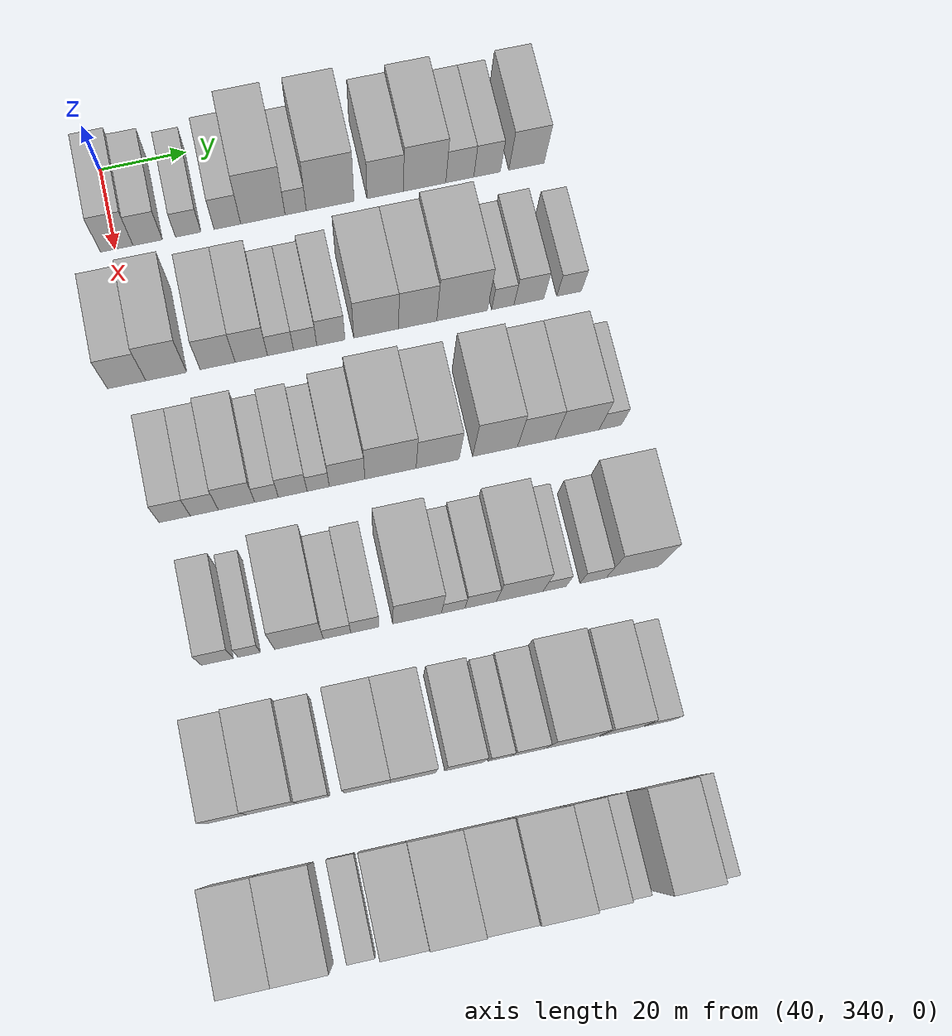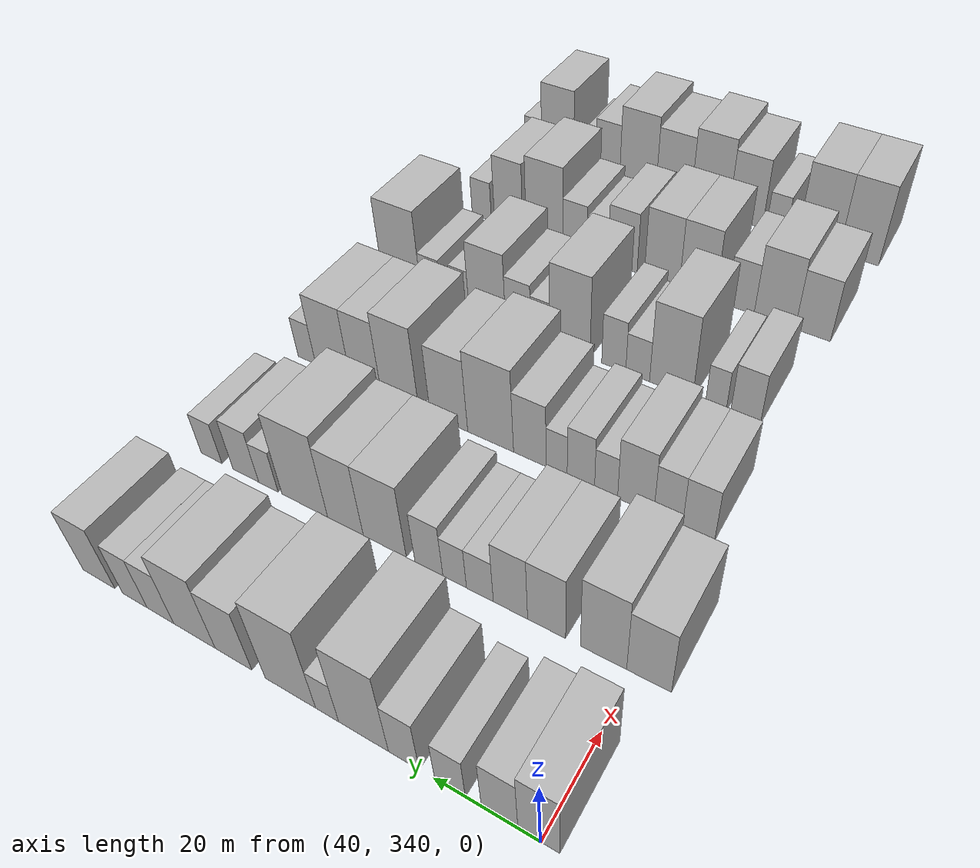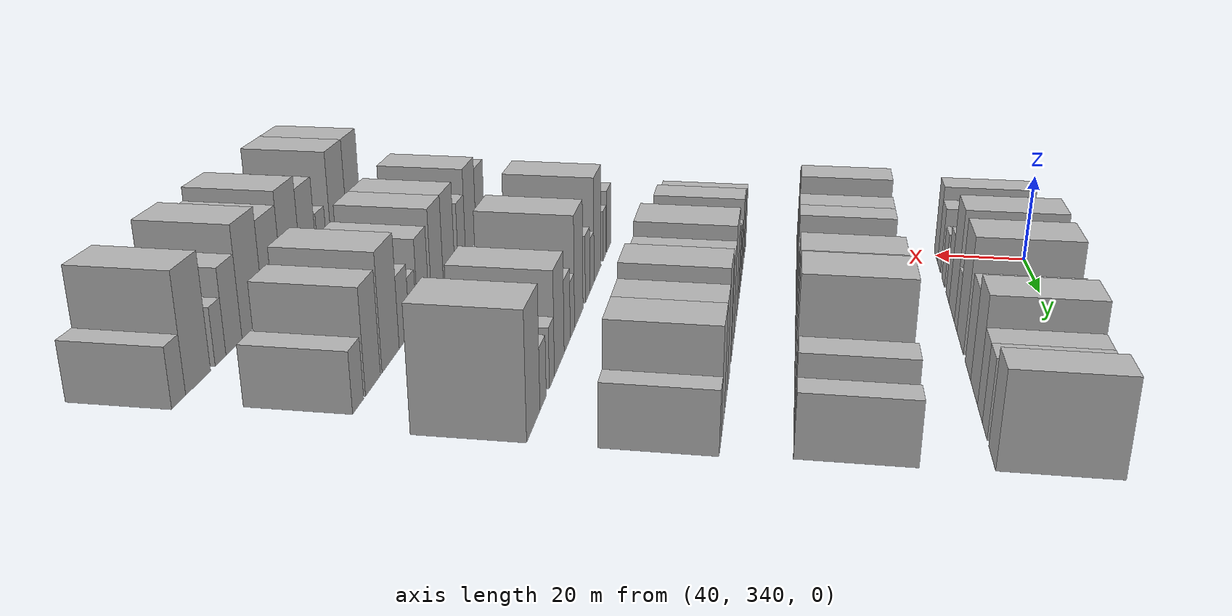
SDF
<sdf version="1.6">
 <world name="default">
  <model name="building_99">
   <static>1</static>
   <pose>50.0000 340.4136 0 0.000000 0.000000 0.000000</pose>
   <link name="link">
    <pose>0 0 9.00 0 0 0</pose>
    <collision name="collision"><geometry><box><size>20.0000 7.4826 18.0000</size></box></geometry></collision>
    <visual name="visual">
     <cast_shadows>0</cast_shadows>
     <geometry><box><size>20.0000 7.4826 18.0000</size></box></geometry>
     <material>
      <script>
       <uri>model://HANNAS_wall/materials/scripts</uri>
       <uri>model://HANNAS_wall/materials/textures</uri>
       <name>vrc/HANNAS_wall</name>
      </script>
     </material>
    </visual>
   </link>
  </model>
  <model name="building_100">
   <static>1</static>
   <pose>50.0000 347.4969 0 0.000000 0.000000 0.000000</pose>
   <link name="link">
    <pose>0 0 7.50 0 0 0</pose>
    <collision name="collision"><geometry><box><size>20.0000 6.6842 15.0000</size></box></geometry></collision>
    <visual name="visual">
     <cast_shadows>0</cast_shadows>
     <geometry><box><size>20.0000 6.6842 15.0000</size></box></geometry>
     <material>
      <script>
       <uri>model://HANNAS_wall/materials/scripts</uri>
       <uri>model://HANNAS_wall/materials/textures</uri>
       <name>vrc/HANNAS_wall</name>
      </script>
     </material>
    </visual>
   </link>
  </model>
  <model name="building_101">
   <static>1</static>
   <pose>50.0000 356.7583 0 0.000000 0.000000 0.000000</pose>
   <link name="link">
    <pose>0 0 6.00 0 0 0</pose>
    <collision name="collision"><geometry><box><size>20.0000 5.8385 12.0000</size></box></geometry></collision>
    <visual name="visual">
     <cast_shadows>0</cast_shadows>
     <geometry><box><size>20.0000 5.8385 12.0000</size></box></geometry>
     <material>
      <script>
       <uri>model://HANNAS_wall/materials/scripts</uri>
       <uri>model://HANNAS_wall/materials/textures</uri>
       <name>vrc/HANNAS_wall</name>
      </script>
     </material>
    </visual>
   </link>
  </model>
  <model name="building_102">
   <static>1</static>
   <pose>50.0000 365.7462 0 0.000000 0.000000 0.000000</pose>
   <link name="link">
    <pose>0 0 7.50 0 0 0</pose>
    <collision name="collision"><geometry><box><size>20.0000 6.1374 15.0000</size></box></geometry></collision>
    <visual name="visual">
     <cast_shadows>0</cast_shadows>
     <geometry><box><size>20.0000 6.1374 15.0000</size></box></geometry>
     <material>
      <script>
       <uri>model://HANNAS_wall/materials/scripts</uri>
       <uri>model://HANNAS_wall/materials/textures</uri>
       <name>vrc/HANNAS_wall</name>
      </script>
     </material>
    </visual>
   </link>
  </model>
  <model name="building_103">
   <static>1</static>
   <pose>50.0000 373.9174 0 0.000000 0.000000 0.000000</pose>
   <link name="link">
    <pose>0 0 12.00 0 0 0</pose>
    <collision name="collision"><geometry><box><size>20.0000 10.2050 24.0000</size></box></geometry></collision>
    <visual name="visual">
     <cast_shadows>0</cast_shadows>
     <geometry><box><size>20.0000 10.2050 24.0000</size></box></geometry>
     <material>
      <script>
       <uri>model://HANNAS_wall/materials/scripts</uri>
       <uri>model://HANNAS_wall/materials/textures</uri>
       <name>vrc/HANNAS_wall</name>
      </script>
     </material>
    </visual>
   </link>
  </model>
  <model name="building_104">
   <static>1</static>
   <pose>50.0000 381.4650 0 0.000000 0.000000 0.000000</pose>
   <link name="link">
    <pose>0 0 6.00 0 0 0</pose>
    <collision name="collision"><geometry><box><size>20.0000 4.8901 12.0000</size></box></geometry></collision>
    <visual name="visual">
     <cast_shadows>0</cast_shadows>
     <geometry><box><size>20.0000 4.8901 12.0000</size></box></geometry>
     <material>
      <script>
       <uri>model://HANNAS_wall/materials/scripts</uri>
       <uri>model://HANNAS_wall/materials/textures</uri>
       <name>vrc/HANNAS_wall</name>
      </script>
     </material>
    </visual>
   </link>
  </model>
  <model name="building_105">
   <static>1</static>
   <pose>50.0000 389.4284 0 0.000000 0.000000 0.000000</pose>
   <link name="link">
    <pose>0 0 12.00 0 0 0</pose>
    <collision name="collision"><geometry><box><size>20.0000 11.0369 24.0000</size></box></geometry></collision>
    <visual name="visual">
     <cast_shadows>0</cast_shadows>
     <geometry><box><size>20.0000 11.0369 24.0000</size></box></geometry>
     <material>
      <script>
       <uri>model://HANNAS_wall/materials/scripts</uri>
       <uri>model://HANNAS_wall/materials/textures</uri>
       <name>vrc/HANNAS_wall</name>
      </script>
     </material>
    </visual>
   </link>
  </model>
  <model name="building_106">
   <static>1</static>
   <pose>50.0000 402.1592 0 0.000000 0.000000 0.000000</pose>
   <link name="link">
    <pose>0 0 9.00 0 0 0</pose>
    <collision name="collision"><geometry><box><size>20.0000 8.4245 18.0000</size></box></geometry></collision>
    <visual name="visual">
     <cast_shadows>0</cast_shadows>
     <geometry><box><size>20.0000 8.4245 18.0000</size></box></geometry>
     <material>
      <script>
       <uri>model://HANNAS_wall/materials/scripts</uri>
       <uri>model://HANNAS_wall/materials/textures</uri>
       <name>vrc/HANNAS_wall</name>
      </script>
     </material>
    </visual>
   </link>
  </model>
  <model name="building_107">
   <static>1</static>
   <pose>50.0000 411.3269 0 0.000000 0.000000 0.000000</pose>
   <link name="link">
    <pose>0 0 10.50 0 0 0</pose>
    <collision name="collision"><geometry><box><size>20.0000 9.9109 21.0000</size></box></geometry></collision>
    <visual name="visual">
     <cast_shadows>0</cast_shadows>
     <geometry><box><size>20.0000 9.9109 21.0000</size></box></geometry>
     <material>
      <script>
       <uri>model://HANNAS_wall/materials/scripts</uri>
       <uri>model://HANNAS_wall/materials/textures</uri>
       <name>vrc/HANNAS_wall</name>
      </script>
     </material>
    </visual>
   </link>
  </model>
  <model name="building_108">
   <static>1</static>
   <pose>50.0000 419.5437 0 0.000000 0.000000 0.000000</pose>
   <link name="link">
    <pose>0 0 7.50 0 0 0</pose>
    <collision name="collision"><geometry><box><size>20.0000 6.5229 15.0000</size></box></geometry></collision>
    <visual name="visual">
     <cast_shadows>0</cast_shadows>
     <geometry><box><size>20.0000 6.5229 15.0000</size></box></geometry>
     <material>
      <script>
       <uri>model://HANNAS_wall/materials/scripts</uri>
       <uri>model://HANNAS_wall/materials/textures</uri>
       <name>vrc/HANNAS_wall</name>
      </script>
     </material>
    </visual>
   </link>
  </model>
  <model name="building_109">
   <static>1</static>
   <pose>50.0000 425.9141 0 0.000000 0.000000 0.000000</pose>
   <link name="link">
    <pose>0 0 7.50 0 0 0</pose>
    <collision name="collision"><geometry><box><size>20.0000 6.2178 15.0000</size></box></geometry></collision>
    <visual name="visual">
     <cast_shadows>0</cast_shadows>
     <geometry><box><size>20.0000 6.2178 15.0000</size></box></geometry>
     <material>
      <script>
       <uri>model://HANNAS_wall/materials/scripts</uri>
       <uri>model://HANNAS_wall/materials/textures</uri>
       <name>vrc/HANNAS_wall</name>
      </script>
     </material>
    </visual>
   </link>
  </model>
  <model name="building_110">
   <static>1</static>
   <pose>50.0000 435.1483 0 0.000000 0.000000 0.000000</pose>
   <link name="link">
    <pose>0 0 9.00 0 0 0</pose>
    <collision name="collision"><geometry><box><size>20.0000 8.2505 18.0000</size></box></geometry></collision>
    <visual name="visual">
     <cast_shadows>0</cast_shadows>
     <geometry><box><size>20.0000 8.2505 18.0000</size></box></geometry>
     <material>
      <script>
       <uri>model://HANNAS_wall/materials/scripts</uri>
       <uri>model://HANNAS_wall/materials/textures</uri>
       <name>vrc/HANNAS_wall</name>
      </script>
     </material>
    </visual>
   </link>
  </model>
  <model name="building_220">
   <static>1</static>
   <pose>82.0000 337.1702 0 0.000000 0.000000 0.000000</pose>
   <link name="link">
    <pose>0 0 9.00 0 0 0</pose>
    <collision name="collision"><geometry><box><size>20.0000 8.5665 18.0000</size></box></geometry></collision>
    <visual name="visual">
     <cast_shadows>0</cast_shadows>
     <geometry><box><size>20.0000 8.5665 18.0000</size></box></geometry>
     <material>
      <script>
       <uri>model://HANNAS_wall/materials/scripts</uri>
       <uri>model://HANNAS_wall/materials/textures</uri>
       <name>vrc/HANNAS_wall</name>
      </script>
     </material>
    </visual>
   </link>
  </model>
  <model name="building_221">
   <static>1</static>
   <pose>82.0000 346.0060 0 0.000000 0.000000 0.000000</pose>
   <link name="link">
    <pose>0 0 10.50 0 0 0</pose>
    <collision name="collision"><geometry><box><size>20.0000 9.1050 21.0000</size></box></geometry></collision>
    <visual name="visual">
     <cast_shadows>0</cast_shadows>
     <geometry><box><size>20.0000 9.1050 21.0000</size></box></geometry>
     <material>
      <script>
       <uri>model://HANNAS_wall/materials/scripts</uri>
       <uri>model://HANNAS_wall/materials/textures</uri>
       <name>vrc/HANNAS_wall</name>
      </script>
     </material>
    </visual>
   </link>
  </model>
  <model name="building_222">
   <static>1</static>
   <pose>82.0000 357.4823 0 0.000000 0.000000 0.000000</pose>
   <link name="link">
    <pose>0 0 9.00 0 0 0</pose>
    <collision name="collision"><geometry><box><size>20.0000 7.8478 18.0000</size></box></geometry></collision>
    <visual name="visual">
     <cast_shadows>0</cast_shadows>
     <geometry><box><size>20.0000 7.8478 18.0000</size></box></geometry>
     <material>
      <script>
       <uri>model://HANNAS_wall/materials/scripts</uri>
       <uri>model://HANNAS_wall/materials/textures</uri>
       <name>vrc/HANNAS_wall</name>
      </script>
     </material>
    </visual>
   </link>
  </model>
  <model name="building_223">
   <static>1</static>
   <pose>82.0000 365.0432 0 0.000000 0.000000 0.000000</pose>
   <link name="link">
    <pose>0 0 9.00 0 0 0</pose>
    <collision name="collision"><geometry><box><size>20.0000 7.2739 18.0000</size></box></geometry></collision>
    <visual name="visual">
     <cast_shadows>0</cast_shadows>
     <geometry><box><size>20.0000 7.2739 18.0000</size></box></geometry>
     <material>
      <script>
       <uri>model://HANNAS_wall/materials/scripts</uri>
       <uri>model://HANNAS_wall/materials/textures</uri>
       <name>vrc/HANNAS_wall</name>
      </script>
     </material>
    </visual>
   </link>
  </model>
  <model name="building_224">
   <static>1</static>
   <pose>82.0000 371.6005 0 0.000000 0.000000 0.000000</pose>
   <link name="link">
    <pose>0 0 6.00 0 0 0</pose>
    <collision name="collision"><geometry><box><size>20.0000 5.8408 12.0000</size></box></geometry></collision>
    <visual name="visual">
     <cast_shadows>0</cast_shadows>
     <geometry><box><size>20.0000 5.8408 12.0000</size></box></geometry>
     <material>
      <script>
       <uri>model://HANNAS_wall/materials/scripts</uri>
       <uri>model://HANNAS_wall/materials/textures</uri>
       <name>vrc/HANNAS_wall</name>
      </script>
     </material>
    </visual>
   </link>
  </model>
  <model name="building_225">
   <static>1</static>
   <pose>82.0000 377.1424 0 0.000000 0.000000 0.000000</pose>
   <link name="link">
    <pose>0 0 6.00 0 0 0</pose>
    <collision name="collision"><geometry><box><size>20.0000 5.2430 12.0000</size></box></geometry></collision>
    <visual name="visual">
     <cast_shadows>0</cast_shadows>
     <geometry><box><size>20.0000 5.2430 12.0000</size></box></geometry>
     <material>
      <script>
       <uri>model://HANNAS_wall/materials/scripts</uri>
       <uri>model://HANNAS_wall/materials/textures</uri>
       <name>vrc/HANNAS_wall</name>
      </script>
     </material>
    </visual>
   </link>
  </model>
  <model name="building_226">
   <static>1</static>
   <pose>82.0000 382.9406 0 0.000000 0.000000 0.000000</pose>
   <link name="link">
    <pose>0 0 7.50 0 0 0</pose>
    <collision name="collision"><geometry><box><size>20.0000 6.3533 15.0000</size></box></geometry></collision>
    <visual name="visual">
     <cast_shadows>0</cast_shadows>
     <geometry><box><size>20.0000 6.3533 15.0000</size></box></geometry>
     <material>
      <script>
       <uri>model://HANNAS_wall/materials/scripts</uri>
       <uri>model://HANNAS_wall/materials/textures</uri>
       <name>vrc/HANNAS_wall</name>
      </script>
     </material>
    </visual>
   </link>
  </model>
  <model name="building_227">
   <static>1</static>
   <pose>82.0000 393.1873 0 0.000000 0.000000 0.000000</pose>
   <link name="link">
    <pose>0 0 10.50 0 0 0</pose>
    <collision name="collision"><geometry><box><size>20.0000 10.1401 21.0000</size></box></geometry></collision>
    <visual name="visual">
     <cast_shadows>0</cast_shadows>
     <geometry><box><size>20.0000 10.1401 21.0000</size></box></geometry>
     <material>
      <script>
       <uri>model://HANNAS_wall/materials/scripts</uri>
       <uri>model://HANNAS_wall/materials/textures</uri>
       <name>vrc/HANNAS_wall</name>
      </script>
     </material>
    </visual>
   </link>
  </model>
  <model name="building_228">
   <static>1</static>
   <pose>82.0000 402.5990 0 0.000000 0.000000 0.000000</pose>
   <link name="link">
    <pose>0 0 10.50 0 0 0</pose>
    <collision name="collision"><geometry><box><size>20.0000 8.6833 21.0000</size></box></geometry></collision>
    <visual name="visual">
     <cast_shadows>0</cast_shadows>
     <geometry><box><size>20.0000 8.6833 21.0000</size></box></geometry>
     <material>
      <script>
       <uri>model://HANNAS_wall/materials/scripts</uri>
       <uri>model://HANNAS_wall/materials/textures</uri>
       <name>vrc/HANNAS_wall</name>
      </script>
     </material>
    </visual>
   </link>
  </model>
  <model name="building_229">
   <static>1</static>
   <pose>82.0000 412.7066 0 0.000000 0.000000 0.000000</pose>
   <link name="link">
    <pose>0 0 12.00 0 0 0</pose>
    <collision name="collision"><geometry><box><size>20.0000 11.5320 24.0000</size></box></geometry></collision>
    <visual name="visual">
     <cast_shadows>0</cast_shadows>
     <geometry><box><size>20.0000 11.5320 24.0000</size></box></geometry>
     <material>
      <script>
       <uri>model://HANNAS_wall/materials/scripts</uri>
       <uri>model://HANNAS_wall/materials/textures</uri>
       <name>vrc/HANNAS_wall</name>
      </script>
     </material>
    </visual>
   </link>
  </model>
  <model name="building_230">
   <static>1</static>
   <pose>82.0000 422.0156 0 0.000000 0.000000 0.000000</pose>
   <link name="link">
    <pose>0 0 6.00 0 0 0</pose>
    <collision name="collision"><geometry><box><size>20.0000 5.0860 12.0000</size></box></geometry></collision>
    <visual name="visual">
     <cast_shadows>0</cast_shadows>
     <geometry><box><size>20.0000 5.0860 12.0000</size></box></geometry>
     <material>
      <script>
       <uri>model://HANNAS_wall/materials/scripts</uri>
       <uri>model://HANNAS_wall/materials/textures</uri>
       <name>vrc/HANNAS_wall</name>
      </script>
     </material>
    </visual>
   </link>
  </model>
  <model name="building_231">
   <static>1</static>
   <pose>82.0000 427.9667 0 0.000000 0.000000 0.000000</pose>
   <link name="link">
    <pose>0 0 7.50 0 0 0</pose>
    <collision name="collision"><geometry><box><size>20.0000 6.8162 15.0000</size></box></geometry></collision>
    <visual name="visual">
     <cast_shadows>0</cast_shadows>
     <geometry><box><size>20.0000 6.8162 15.0000</size></box></geometry>
     <material>
      <script>
       <uri>model://HANNAS_wall/materials/scripts</uri>
       <uri>model://HANNAS_wall/materials/textures</uri>
       <name>vrc/HANNAS_wall</name>
      </script>
     </material>
    </visual>
   </link>
  </model>
  <model name="building_232">
   <static>1</static>
   <pose>82.0000 437.2028 0 0.000000 0.000000 0.000000</pose>
   <link name="link">
    <pose>0 0 6.00 0 0 0</pose>
    <collision name="collision"><geometry><box><size>20.0000 5.6559 12.0000</size></box></geometry></collision>
    <visual name="visual">
     <cast_shadows>0</cast_shadows>
     <geometry><box><size>20.0000 5.6559 12.0000</size></box></geometry>
     <material>
      <script>
       <uri>model://HANNAS_wall/materials/scripts</uri>
       <uri>model://HANNAS_wall/materials/textures</uri>
       <name>vrc/HANNAS_wall</name>
      </script>
     </material>
    </visual>
   </link>
  </model>
  <model name="building_338">
   <static>1</static>
   <pose>114.0000 342.0853 0 0.000000 0.000000 0.000000</pose>
   <link name="link">
    <pose>0 0 7.50 0 0 0</pose>
    <collision name="collision"><geometry><box><size>20.0000 6.7898 15.0000</size></box></geometry></collision>
    <visual name="visual">
     <cast_shadows>0</cast_shadows>
     <geometry><box><size>20.0000 6.7898 15.0000</size></box></geometry>
     <material>
      <script>
       <uri>model://HANNAS_wall/materials/scripts</uri>
       <uri>model://HANNAS_wall/materials/textures</uri>
       <name>vrc/HANNAS_wall</name>
      </script>
     </material>
    </visual>
   </link>
  </model>
  <model name="building_339">
   <static>1</static>
   <pose>114.0000 348.5525 0 0.000000 0.000000 0.000000</pose>
   <link name="link">
    <pose>0 0 7.50 0 0 0</pose>
    <collision name="collision"><geometry><box><size>20.0000 6.1446 15.0000</size></box></geometry></collision>
    <visual name="visual">
     <cast_shadows>0</cast_shadows>
     <geometry><box><size>20.0000 6.1446 15.0000</size></box></geometry>
     <material>
      <script>
       <uri>model://HANNAS_wall/materials/scripts</uri>
       <uri>model://HANNAS_wall/materials/textures</uri>
       <name>vrc/HANNAS_wall</name>
      </script>
     </material>
    </visual>
   </link>
  </model>
  <model name="building_340">
   <static>1</static>
   <pose>114.0000 355.6087 0 0.000000 0.000000 0.000000</pose>
   <link name="link">
    <pose>0 0 9.00 0 0 0</pose>
    <collision name="collision"><geometry><box><size>20.0000 7.9677 18.0000</size></box></geometry></collision>
    <visual name="visual">
     <cast_shadows>0</cast_shadows>
     <geometry><box><size>20.0000 7.9677 18.0000</size></box></geometry>
     <material>
      <script>
       <uri>model://HANNAS_wall/materials/scripts</uri>
       <uri>model://HANNAS_wall/materials/textures</uri>
       <name>vrc/HANNAS_wall</name>
      </script>
     </material>
    </visual>
   </link>
  </model>
  <model name="building_341">
   <static>1</static>
   <pose>114.0000 362.1841 0 0.000000 0.000000 0.000000</pose>
   <link name="link">
    <pose>0 0 6.00 0 0 0</pose>
    <collision name="collision"><geometry><box><size>20.0000 5.1832 12.0000</size></box></geometry></collision>
    <visual name="visual">
     <cast_shadows>0</cast_shadows>
     <geometry><box><size>20.0000 5.1832 12.0000</size></box></geometry>
     <material>
      <script>
       <uri>model://HANNAS_wall/materials/scripts</uri>
       <uri>model://HANNAS_wall/materials/textures</uri>
       <name>vrc/HANNAS_wall</name>
      </script>
     </material>
    </visual>
   </link>
  </model>
  <model name="building_342">
   <static>1</static>
   <pose>114.0000 367.9247 0 0.000000 0.000000 0.000000</pose>
   <link name="link">
    <pose>0 0 7.50 0 0 0</pose>
    <collision name="collision"><geometry><box><size>20.0000 6.2980 15.0000</size></box></geometry></collision>
    <visual name="visual">
     <cast_shadows>0</cast_shadows>
     <geometry><box><size>20.0000 6.2980 15.0000</size></box></geometry>
     <material>
      <script>
       <uri>model://HANNAS_wall/materials/scripts</uri>
       <uri>model://HANNAS_wall/materials/textures</uri>
       <name>vrc/HANNAS_wall</name>
      </script>
     </material>
    </visual>
   </link>
  </model>
  <model name="building_343">
   <static>1</static>
   <pose>114.0000 373.5170 0 0.000000 0.000000 0.000000</pose>
   <link name="link">
    <pose>0 0 6.00 0 0 0</pose>
    <collision name="collision"><geometry><box><size>20.0000 4.8867 12.0000</size></box></geometry></collision>
    <visual name="visual">
     <cast_shadows>0</cast_shadows>
     <geometry><box><size>20.0000 4.8867 12.0000</size></box></geometry>
     <material>
      <script>
       <uri>model://HANNAS_wall/materials/scripts</uri>
       <uri>model://HANNAS_wall/materials/textures</uri>
       <name>vrc/HANNAS_wall</name>
      </script>
     </material>
    </visual>
   </link>
  </model>
  <model name="building_344">
   <static>1</static>
   <pose>114.0000 379.8763 0 0.000000 0.000000 0.000000</pose>
   <link name="link">
    <pose>0 0 9.00 0 0 0</pose>
    <collision name="collision"><geometry><box><size>20.0000 7.8319 18.0000</size></box></geometry></collision>
    <visual name="visual">
     <cast_shadows>0</cast_shadows>
     <geometry><box><size>20.0000 7.8319 18.0000</size></box></geometry>
     <material>
      <script>
       <uri>model://HANNAS_wall/materials/scripts</uri>
       <uri>model://HANNAS_wall/materials/textures</uri>
       <name>vrc/HANNAS_wall</name>
      </script>
     </material>
    </visual>
   </link>
  </model>
  <model name="building_345">
   <static>1</static>
   <pose>114.0000 389.4554 0 0.000000 0.000000 0.000000</pose>
   <link name="link">
    <pose>0 0 12.00 0 0 0</pose>
    <collision name="collision"><geometry><box><size>20.0000 11.3261 24.0000</size></box></geometry></collision>
    <visual name="visual">
     <cast_shadows>0</cast_shadows>
     <geometry><box><size>20.0000 11.3261 24.0000</size></box></geometry>
     <material>
      <script>
       <uri>model://HANNAS_wall/materials/scripts</uri>
       <uri>model://HANNAS_wall/materials/textures</uri>
       <name>vrc/HANNAS_wall</name>
      </script>
     </material>
    </visual>
   </link>
  </model>
  <model name="building_346">
   <static>1</static>
   <pose>114.0000 399.8982 0 0.000000 0.000000 0.000000</pose>
   <link name="link">
    <pose>0 0 10.50 0 0 0</pose>
    <collision name="collision"><geometry><box><size>20.0000 9.5595 21.0000</size></box></geometry></collision>
    <visual name="visual">
     <cast_shadows>0</cast_shadows>
     <geometry><box><size>20.0000 9.5595 21.0000</size></box></geometry>
     <material>
      <script>
       <uri>model://HANNAS_wall/materials/scripts</uri>
       <uri>model://HANNAS_wall/materials/textures</uri>
       <name>vrc/HANNAS_wall</name>
      </script>
     </material>
    </visual>
   </link>
  </model>
  <model name="building_347">
   <static>1</static>
   <pose>114.0000 412.6769 0 0.000000 0.000000 0.000000</pose>
   <link name="link">
    <pose>0 0 12.00 0 0 0</pose>
    <collision name="collision"><geometry><box><size>20.0000 9.9980 24.0000</size></box></geometry></collision>
    <visual name="visual">
     <cast_shadows>0</cast_shadows>
     <geometry><box><size>20.0000 9.9980 24.0000</size></box></geometry>
     <material>
      <script>
       <uri>model://HANNAS_wall/materials/scripts</uri>
       <uri>model://HANNAS_wall/materials/textures</uri>
       <name>vrc/HANNAS_wall</name>
      </script>
     </material>
    </visual>
   </link>
  </model>
  <model name="building_348">
   <static>1</static>
   <pose>114.0000 421.8931 0 0.000000 0.000000 0.000000</pose>
   <link name="link">
    <pose>0 0 10.50 0 0 0</pose>
    <collision name="collision"><geometry><box><size>20.0000 8.4344 21.0000</size></box></geometry></collision>
    <visual name="visual">
     <cast_shadows>0</cast_shadows>
     <geometry><box><size>20.0000 8.4344 21.0000</size></box></geometry>
     <material>
      <script>
       <uri>model://HANNAS_wall/materials/scripts</uri>
       <uri>model://HANNAS_wall/materials/textures</uri>
       <name>vrc/HANNAS_wall</name>
      </script>
     </material>
    </visual>
   </link>
  </model>
  <model name="building_349">
   <static>1</static>
   <pose>114.0000 431.0409 0 0.000000 0.000000 0.000000</pose>
   <link name="link">
    <pose>0 0 10.50 0 0 0</pose>
    <collision name="collision"><geometry><box><size>20.0000 9.8613 21.0000</size></box></geometry></collision>
    <visual name="visual">
     <cast_shadows>0</cast_shadows>
     <geometry><box><size>20.0000 9.8613 21.0000</size></box></geometry>
     <material>
      <script>
       <uri>model://HANNAS_wall/materials/scripts</uri>
       <uri>model://HANNAS_wall/materials/textures</uri>
       <name>vrc/HANNAS_wall</name>
      </script>
     </material>
    </visual>
   </link>
  </model>
  <model name="building_350">
   <static>1</static>
   <pose>114.0000 438.4761 0 0.000000 0.000000 0.000000</pose>
   <link name="link">
    <pose>0 0 6.00 0 0 0</pose>
    <collision name="collision"><geometry><box><size>20.0000 5.0091 12.0000</size></box></geometry></collision>
    <visual name="visual">
     <cast_shadows>0</cast_shadows>
     <geometry><box><size>20.0000 5.0091 12.0000</size></box></geometry>
     <material>
      <script>
       <uri>model://HANNAS_wall/materials/scripts</uri>
       <uri>model://HANNAS_wall/materials/textures</uri>
       <name>vrc/HANNAS_wall</name>
      </script>
     </material>
    </visual>
   </link>
  </model>
  <model name="building_458">
   <static>1</static>
   <pose>146.0000 345.3643 0 0.000000 0.000000 0.000000</pose>
   <link name="link">
    <pose>0 0 7.50 0 0 0</pose>
    <collision name="collision"><geometry><box><size>20.0000 6.7942 15.0000</size></box></geometry></collision>
    <visual name="visual">
     <cast_shadows>0</cast_shadows>
     <geometry><box><size>20.0000 6.7942 15.0000</size></box></geometry>
     <material>
      <script>
       <uri>model://HANNAS_wall/materials/scripts</uri>
       <uri>model://HANNAS_wall/materials/textures</uri>
       <name>vrc/HANNAS_wall</name>
      </script>
     </material>
    </visual>
   </link>
  </model>
  <model name="building_459">
   <static>1</static>
   <pose>146.0000 352.1753 0 0.000000 0.000000 0.000000</pose>
   <link name="link">
    <pose>0 0 6.00 0 0 0</pose>
    <collision name="collision"><geometry><box><size>20.0000 4.8277 12.0000</size></box></geometry></collision>
    <visual name="visual">
     <cast_shadows>0</cast_shadows>
     <geometry><box><size>20.0000 4.8277 12.0000</size></box></geometry>
     <material>
      <script>
       <uri>model://HANNAS_wall/materials/scripts</uri>
       <uri>model://HANNAS_wall/materials/textures</uri>
       <name>vrc/HANNAS_wall</name>
      </script>
     </material>
    </visual>
   </link>
  </model>
  <model name="building_460">
   <static>1</static>
   <pose>146.0000 362.8091 0 0.000000 0.000000 0.000000</pose>
   <link name="link">
    <pose>0 0 12.00 0 0 0</pose>
    <collision name="collision"><geometry><box><size>20.0000 10.4398 24.0000</size></box></geometry></collision>
    <visual name="visual">
     <cast_shadows>0</cast_shadows>
     <geometry><box><size>20.0000 10.4398 24.0000</size></box></geometry>
     <material>
      <script>
       <uri>model://HANNAS_wall/materials/scripts</uri>
       <uri>model://HANNAS_wall/materials/textures</uri>
       <name>vrc/HANNAS_wall</name>
      </script>
     </material>
    </visual>
   </link>
  </model>
  <model name="building_461">
   <static>1</static>
   <pose>146.0000 370.9760 0 0.000000 0.000000 0.000000</pose>
   <link name="link">
    <pose>0 0 6.00 0 0 0</pose>
    <collision name="collision"><geometry><box><size>20.0000 5.8940 12.0000</size></box></geometry></collision>
    <visual name="visual">
     <cast_shadows>0</cast_shadows>
     <geometry><box><size>20.0000 5.8940 12.0000</size></box></geometry>
     <material>
      <script>
       <uri>model://HANNAS_wall/materials/scripts</uri>
       <uri>model://HANNAS_wall/materials/textures</uri>
       <name>vrc/HANNAS_wall</name>
      </script>
     </material>
    </visual>
   </link>
  </model>
  <model name="building_462">
   <static>1</static>
   <pose>146.0000 376.9532 0 0.000000 0.000000 0.000000</pose>
   <link name="link">
    <pose>0 0 7.50 0 0 0</pose>
    <collision name="collision"><geometry><box><size>20.0000 6.0603 15.0000</size></box></geometry></collision>
    <visual name="visual">
     <cast_shadows>0</cast_shadows>
     <geometry><box><size>20.0000 6.0603 15.0000</size></box></geometry>
     <material>
      <script>
       <uri>model://HANNAS_wall/materials/scripts</uri>
       <uri>model://HANNAS_wall/materials/textures</uri>
       <name>vrc/HANNAS_wall</name>
      </script>
     </material>
    </visual>
   </link>
  </model>
  <model name="building_463">
   <static>1</static>
   <pose>146.0000 388.2303 0 0.000000 0.000000 0.000000</pose>
   <link name="link">
    <pose>0 0 12.00 0 0 0</pose>
    <collision name="collision"><geometry><box><size>20.0000 10.4940 24.0000</size></box></geometry></collision>
    <visual name="visual">
     <cast_shadows>0</cast_shadows>
     <geometry><box><size>20.0000 10.4940 24.0000</size></box></geometry>
     <material>
      <script>
       <uri>model://HANNAS_wall/materials/scripts</uri>
       <uri>model://HANNAS_wall/materials/textures</uri>
       <name>vrc/HANNAS_wall</name>
      </script>
     </material>
    </visual>
   </link>
  </model>
  <model name="building_464">
   <static>1</static>
   <pose>146.0000 396.0187 0 0.000000 0.000000 0.000000</pose>
   <link name="link">
    <pose>0 0 6.00 0 0 0</pose>
    <collision name="collision"><geometry><box><size>20.0000 5.0828 12.0000</size></box></geometry></collision>
    <visual name="visual">
     <cast_shadows>0</cast_shadows>
     <geometry><box><size>20.0000 5.0828 12.0000</size></box></geometry>
     <material>
      <script>
       <uri>model://HANNAS_wall/materials/scripts</uri>
       <uri>model://HANNAS_wall/materials/textures</uri>
       <name>vrc/HANNAS_wall</name>
      </script>
     </material>
    </visual>
   </link>
  </model>
  <model name="building_465">
   <static>1</static>
   <pose>146.0000 401.9816 0 0.000000 0.000000 0.000000</pose>
   <link name="link">
    <pose>0 0 7.50 0 0 0</pose>
    <collision name="collision"><geometry><box><size>20.0000 6.8430 15.0000</size></box></geometry></collision>
    <visual name="visual">
     <cast_shadows>0</cast_shadows>
     <geometry><box><size>20.0000 6.8430 15.0000</size></box></geometry>
     <material>
      <script>
       <uri>model://HANNAS_wall/materials/scripts</uri>
       <uri>model://HANNAS_wall/materials/textures</uri>
       <name>vrc/HANNAS_wall</name>
      </script>
     </material>
    </visual>
   </link>
  </model>
  <model name="building_466">
   <static>1</static>
   <pose>146.0000 410.4997 0 0.000000 0.000000 0.000000</pose>
   <link name="link">
    <pose>0 0 10.50 0 0 0</pose>
    <collision name="collision"><geometry><box><size>20.0000 10.1931 21.0000</size></box></geometry></collision>
    <visual name="visual">
     <cast_shadows>0</cast_shadows>
     <geometry><box><size>20.0000 10.1931 21.0000</size></box></geometry>
     <material>
      <script>
       <uri>model://HANNAS_wall/materials/scripts</uri>
       <uri>model://HANNAS_wall/materials/textures</uri>
       <name>vrc/HANNAS_wall</name>
      </script>
     </material>
    </visual>
   </link>
  </model>
  <model name="building_467">
   <static>1</static>
   <pose>146.0000 418.1303 0 0.000000 0.000000 0.000000</pose>
   <link name="link">
    <pose>0 0 6.00 0 0 0</pose>
    <collision name="collision"><geometry><box><size>20.0000 5.0680 12.0000</size></box></geometry></collision>
    <visual name="visual">
     <cast_shadows>0</cast_shadows>
     <geometry><box><size>20.0000 5.0680 12.0000</size></box></geometry>
     <material>
      <script>
       <uri>model://HANNAS_wall/materials/scripts</uri>
       <uri>model://HANNAS_wall/materials/textures</uri>
       <name>vrc/HANNAS_wall</name>
      </script>
     </material>
    </visual>
   </link>
  </model>
  <model name="building_468">
   <static>1</static>
   <pose>146.0000 426.5678 0 0.000000 0.000000 0.000000</pose>
   <link name="link">
    <pose>0 0 6.00 0 0 0</pose>
    <collision name="collision"><geometry><box><size>20.0000 5.8070 12.0000</size></box></geometry></collision>
    <visual name="visual">
     <cast_shadows>0</cast_shadows>
     <geometry><box><size>20.0000 5.8070 12.0000</size></box></geometry>
     <material>
      <script>
       <uri>model://HANNAS_wall/materials/scripts</uri>
       <uri>model://HANNAS_wall/materials/textures</uri>
       <name>vrc/HANNAS_wall</name>
      </script>
     </material>
    </visual>
   </link>
  </model>
  <model name="building_469">
   <static>1</static>
   <pose>146.0000 435.2253 0 0.000000 0.000000 0.000000</pose>
   <link name="link">
    <pose>0 0 12.00 0 0 0</pose>
    <collision name="collision"><geometry><box><size>20.0000 11.5081 24.0000</size></box></geometry></collision>
    <visual name="visual">
     <cast_shadows>0</cast_shadows>
     <geometry><box><size>20.0000 11.5081 24.0000</size></box></geometry>
     <material>
      <script>
       <uri>model://HANNAS_wall/materials/scripts</uri>
       <uri>model://HANNAS_wall/materials/textures</uri>
       <name>vrc/HANNAS_wall</name>
      </script>
     </material>
    </visual>
   </link>
  </model>
  <model name="building_578">
   <static>1</static>
   <pose>178.0000 341.5354 0 0.000000 0.000000 0.000000</pose>
   <link name="link">
    <pose>0 0 9.00 0 0 0</pose>
    <collision name="collision"><geometry><box><size>20.0000 8.5897 18.0000</size></box></geometry></collision>
    <visual name="visual">
     <cast_shadows>0</cast_shadows>
     <geometry><box><size>20.0000 8.5897 18.0000</size></box></geometry>
     <material>
      <script>
       <uri>model://HANNAS_wall/materials/scripts</uri>
       <uri>model://HANNAS_wall/materials/textures</uri>
       <name>vrc/HANNAS_wall</name>
      </script>
     </material>
    </visual>
   </link>
  </model>
  <model name="building_579">
   <static>1</static>
   <pose>178.0000 350.9362 0 0.000000 0.000000 0.000000</pose>
   <link name="link">
    <pose>0 0 10.50 0 0 0</pose>
    <collision name="collision"><geometry><box><size>20.0000 10.2118 21.0000</size></box></geometry></collision>
    <visual name="visual">
     <cast_shadows>0</cast_shadows>
     <geometry><box><size>20.0000 10.2118 21.0000</size></box></geometry>
     <material>
      <script>
       <uri>model://HANNAS_wall/materials/scripts</uri>
       <uri>model://HANNAS_wall/materials/textures</uri>
       <name>vrc/HANNAS_wall</name>
      </script>
     </material>
    </visual>
   </link>
  </model>
  <model name="building_580">
   <static>1</static>
   <pose>178.0000 359.4587 0 0.000000 0.000000 0.000000</pose>
   <link name="link">
    <pose>0 0 7.50 0 0 0</pose>
    <collision name="collision"><geometry><box><size>20.0000 6.8333 15.0000</size></box></geometry></collision>
    <visual name="visual">
     <cast_shadows>0</cast_shadows>
     <geometry><box><size>20.0000 6.8333 15.0000</size></box></geometry>
     <material>
      <script>
       <uri>model://HANNAS_wall/materials/scripts</uri>
       <uri>model://HANNAS_wall/materials/textures</uri>
       <name>vrc/HANNAS_wall</name>
      </script>
     </material>
    </visual>
   </link>
  </model>
  <model name="building_581">
   <static>1</static>
   <pose>178.0000 370.6694 0 0.000000 0.000000 0.000000</pose>
   <link name="link">
    <pose>0 0 10.50 0 0 0</pose>
    <collision name="collision"><geometry><box><size>20.0000 9.5880 21.0000</size></box></geometry></collision>
    <visual name="visual">
     <cast_shadows>0</cast_shadows>
     <geometry><box><size>20.0000 9.5880 21.0000</size></box></geometry>
     <material>
      <script>
       <uri>model://HANNAS_wall/materials/scripts</uri>
       <uri>model://HANNAS_wall/materials/textures</uri>
       <name>vrc/HANNAS_wall</name>
      </script>
     </material>
    </visual>
   </link>
  </model>
  <model name="building_582">
   <static>1</static>
   <pose>178.0000 380.1929 0 0.000000 0.000000 0.000000</pose>
   <link name="link">
    <pose>0 0 10.50 0 0 0</pose>
    <collision name="collision"><geometry><box><size>20.0000 9.4590 21.0000</size></box></geometry></collision>
    <visual name="visual">
     <cast_shadows>0</cast_shadows>
     <geometry><box><size>20.0000 9.4590 21.0000</size></box></geometry>
     <material>
      <script>
       <uri>model://HANNAS_wall/materials/scripts</uri>
       <uri>model://HANNAS_wall/materials/textures</uri>
       <name>vrc/HANNAS_wall</name>
      </script>
     </material>
    </visual>
   </link>
  </model>
  <model name="building_583">
   <static>1</static>
   <pose>178.0000 390.9821 0 0.000000 0.000000 0.000000</pose>
   <link name="link">
    <pose>0 0 9.00 0 0 0</pose>
    <collision name="collision"><geometry><box><size>20.0000 8.1195 18.0000</size></box></geometry></collision>
    <visual name="visual">
     <cast_shadows>0</cast_shadows>
     <geometry><box><size>20.0000 8.1195 18.0000</size></box></geometry>
     <material>
      <script>
       <uri>model://HANNAS_wall/materials/scripts</uri>
       <uri>model://HANNAS_wall/materials/textures</uri>
       <name>vrc/HANNAS_wall</name>
      </script>
     </material>
    </visual>
   </link>
  </model>
  <model name="building_584">
   <static>1</static>
   <pose>178.0000 398.5315 0 0.000000 0.000000 0.000000</pose>
   <link name="link">
    <pose>0 0 6.00 0 0 0</pose>
    <collision name="collision"><geometry><box><size>20.0000 4.9792 12.0000</size></box></geometry></collision>
    <visual name="visual">
     <cast_shadows>0</cast_shadows>
     <geometry><box><size>20.0000 4.9792 12.0000</size></box></geometry>
     <material>
      <script>
       <uri>model://HANNAS_wall/materials/scripts</uri>
       <uri>model://HANNAS_wall/materials/textures</uri>
       <name>vrc/HANNAS_wall</name>
      </script>
     </material>
    </visual>
   </link>
  </model>
  <model name="building_585">
   <static>1</static>
   <pose>178.0000 404.5197 0 0.000000 0.000000 0.000000</pose>
   <link name="link">
    <pose>0 0 7.50 0 0 0</pose>
    <collision name="collision"><geometry><box><size>20.0000 6.9972 15.0000</size></box></geometry></collision>
    <visual name="visual">
     <cast_shadows>0</cast_shadows>
     <geometry><box><size>20.0000 6.9972 15.0000</size></box></geometry>
     <material>
      <script>
       <uri>model://HANNAS_wall/materials/scripts</uri>
       <uri>model://HANNAS_wall/materials/textures</uri>
       <name>vrc/HANNAS_wall</name>
      </script>
     </material>
    </visual>
   </link>
  </model>
  <model name="building_586">
   <static>1</static>
   <pose>178.0000 413.4268 0 0.000000 0.000000 0.000000</pose>
   <link name="link">
    <pose>0 0 12.00 0 0 0</pose>
    <collision name="collision"><geometry><box><size>20.0000 10.8170 24.0000</size></box></geometry></collision>
    <visual name="visual">
     <cast_shadows>0</cast_shadows>
     <geometry><box><size>20.0000 10.8170 24.0000</size></box></geometry>
     <material>
      <script>
       <uri>model://HANNAS_wall/materials/scripts</uri>
       <uri>model://HANNAS_wall/materials/textures</uri>
       <name>vrc/HANNAS_wall</name>
      </script>
     </material>
    </visual>
   </link>
  </model>
  <model name="building_587">
   <static>1</static>
   <pose>178.0000 424.1392 0 0.000000 0.000000 0.000000</pose>
   <link name="link">
    <pose>0 0 10.50 0 0 0</pose>
    <collision name="collision"><geometry><box><size>20.0000 8.6077 21.0000</size></box></geometry></collision>
    <visual name="visual">
     <cast_shadows>0</cast_shadows>
     <geometry><box><size>20.0000 8.6077 21.0000</size></box></geometry>
     <material>
      <script>
       <uri>model://HANNAS_wall/materials/scripts</uri>
       <uri>model://HANNAS_wall/materials/textures</uri>
       <name>vrc/HANNAS_wall</name>
      </script>
     </material>
    </visual>
   </link>
  </model>
  <model name="building_588">
   <static>1</static>
   <pose>178.0000 432.4191 0 0.000000 0.000000 0.000000</pose>
   <link name="link">
    <pose>0 0 6.00 0 0 0</pose>
    <collision name="collision"><geometry><box><size>20.0000 5.9522 12.0000</size></box></geometry></collision>
    <visual name="visual">
     <cast_shadows>0</cast_shadows>
     <geometry><box><size>20.0000 5.9522 12.0000</size></box></geometry>
     <material>
      <script>
       <uri>model://HANNAS_wall/materials/scripts</uri>
       <uri>model://HANNAS_wall/materials/textures</uri>
       <name>vrc/HANNAS_wall</name>
      </script>
     </material>
    </visual>
   </link>
  </model>
  <model name="building_688">
   <static>1</static>
   <pose>210.0000 340.7502 0 0.000000 0.000000 0.000000</pose>
   <link name="link">
    <pose>0 0 12.00 0 0 0</pose>
    <collision name="collision"><geometry><box><size>20.0000 10.2448 24.0000</size></box></geometry></collision>
    <visual name="visual">
     <cast_shadows>0</cast_shadows>
     <geometry><box><size>20.0000 10.2448 24.0000</size></box></geometry>
     <material>
      <script>
       <uri>model://HANNAS_wall/materials/scripts</uri>
       <uri>model://HANNAS_wall/materials/textures</uri>
       <name>vrc/HANNAS_wall</name>
      </script>
     </material>
    </visual>
   </link>
  </model>
  <model name="building_689">
   <static>1</static>
   <pose>210.0000 351.3784 0 0.000000 0.000000 0.000000</pose>
   <link name="link">
    <pose>0 0 12.00 0 0 0</pose>
    <collision name="collision"><geometry><box><size>20.0000 11.0116 24.0000</size></box></geometry></collision>
    <visual name="visual">
     <cast_shadows>0</cast_shadows>
     <geometry><box><size>20.0000 11.0116 24.0000</size></box></geometry>
     <material>
      <script>
       <uri>model://HANNAS_wall/materials/scripts</uri>
       <uri>model://HANNAS_wall/materials/textures</uri>
       <name>vrc/HANNAS_wall</name>
      </script>
     </material>
    </visual>
   </link>
  </model>
  <model name="building_690">
   <static>1</static>
   <pose>210.0000 362.6733 0 0.000000 0.000000 0.000000</pose>
   <link name="link">
    <pose>0 0 6.00 0 0 0</pose>
    <collision name="collision"><geometry><box><size>20.0000 5.5782 12.0000</size></box></geometry></collision>
    <visual name="visual">
     <cast_shadows>0</cast_shadows>
     <geometry><box><size>20.0000 5.5782 12.0000</size></box></geometry>
     <material>
      <script>
       <uri>model://HANNAS_wall/materials/scripts</uri>
       <uri>model://HANNAS_wall/materials/textures</uri>
       <name>vrc/HANNAS_wall</name>
      </script>
     </material>
    </visual>
   </link>
  </model>
  <model name="building_691">
   <static>1</static>
   <pose>210.0000 371.2086 0 0.000000 0.000000 0.000000</pose>
   <link name="link">
    <pose>0 0 10.50 0 0 0</pose>
    <collision name="collision"><geometry><box><size>20.0000 9.4924 21.0000</size></box></geometry></collision>
    <visual name="visual">
     <cast_shadows>0</cast_shadows>
     <geometry><box><size>20.0000 9.4924 21.0000</size></box></geometry>
     <material>
      <script>
       <uri>model://HANNAS_wall/materials/scripts</uri>
       <uri>model://HANNAS_wall/materials/textures</uri>
       <name>vrc/HANNAS_wall</name>
      </script>
     </material>
    </visual>
   </link>
  </model>
  <model name="building_692">
   <static>1</static>
   <pose>210.0000 381.3911 0 0.000000 0.000000 0.000000</pose>
   <link name="link">
    <pose>0 0 12.00 0 0 0</pose>
    <collision name="collision"><geometry><box><size>20.0000 10.8726 24.0000</size></box></geometry></collision>
    <visual name="visual">
     <cast_shadows>0</cast_shadows>
     <geometry><box><size>20.0000 10.8726 24.0000</size></box></geometry>
     <material>
      <script>
       <uri>model://HANNAS_wall/materials/scripts</uri>
       <uri>model://HANNAS_wall/materials/textures</uri>
       <name>vrc/HANNAS_wall</name>
      </script>
     </material>
    </visual>
   </link>
  </model>
  <model name="building_693">
   <static>1</static>
   <pose>210.0000 391.9900 0 0.000000 0.000000 0.000000</pose>
   <link name="link">
    <pose>0 0 10.50 0 0 0</pose>
    <collision name="collision"><geometry><box><size>20.0000 10.3251 21.0000</size></box></geometry></collision>
    <visual name="visual">
     <cast_shadows>0</cast_shadows>
     <geometry><box><size>20.0000 10.3251 21.0000</size></box></geometry>
     <material>
      <script>
       <uri>model://HANNAS_wall/materials/scripts</uri>
       <uri>model://HANNAS_wall/materials/textures</uri>
       <name>vrc/HANNAS_wall</name>
      </script>
     </material>
    </visual>
   </link>
  </model>
  <model name="building_694">
   <static>1</static>
   <pose>210.0000 402.6496 0 0.000000 0.000000 0.000000</pose>
   <link name="link">
    <pose>0 0 12.00 0 0 0</pose>
    <collision name="collision"><geometry><box><size>20.0000 10.9940 24.0000</size></box></geometry></collision>
    <visual name="visual">
     <cast_shadows>0</cast_shadows>
     <geometry><box><size>20.0000 10.9940 24.0000</size></box></geometry>
     <material>
      <script>
       <uri>model://HANNAS_wall/materials/scripts</uri>
       <uri>model://HANNAS_wall/materials/textures</uri>
       <name>vrc/HANNAS_wall</name>
      </script>
     </material>
    </visual>
   </link>
  </model>
  <model name="building_695">
   <static>1</static>
   <pose>210.0000 411.9120 0 0.000000 0.000000 0.000000</pose>
   <link name="link">
    <pose>0 0 9.00 0 0 0</pose>
    <collision name="collision"><geometry><box><size>20.0000 7.5309 18.0000</size></box></geometry></collision>
    <visual name="visual">
     <cast_shadows>0</cast_shadows>
     <geometry><box><size>20.0000 7.5309 18.0000</size></box></geometry>
     <material>
      <script>
       <uri>model://HANNAS_wall/materials/scripts</uri>
       <uri>model://HANNAS_wall/materials/textures</uri>
       <name>vrc/HANNAS_wall</name>
      </script>
     </material>
    </visual>
   </link>
  </model>
  <model name="building_696">
   <static>1</static>
   <pose>210.0000 418.0799 0 0.000000 0.000000 0.000000</pose>
   <link name="link">
    <pose>0 0 6.00 0 0 0</pose>
    <collision name="collision"><geometry><box><size>20.0000 4.8049 12.0000</size></box></geometry></collision>
    <visual name="visual">
     <cast_shadows>0</cast_shadows>
     <geometry><box><size>20.0000 4.8049 12.0000</size></box></geometry>
     <material>
      <script>
       <uri>model://HANNAS_wall/materials/scripts</uri>
       <uri>model://HANNAS_wall/materials/textures</uri>
       <name>vrc/HANNAS_wall</name>
      </script>
     </material>
    </visual>
   </link>
  </model>
  <model name="building_697">
   <static>1</static>
   <pose>210.0000 427.6167 0 0.000000 0.000000 0.000000</pose>
   <link name="link">
    <pose>0 0 12.00 0 0 0</pose>
    <collision name="collision"><geometry><box><size>20.0000 10.2686 24.0000</size></box></geometry></collision>
    <visual name="visual">
     <cast_shadows>0</cast_shadows>
     <geometry><box><size>20.0000 10.2686 24.0000</size></box></geometry>
     <material>
      <script>
       <uri>model://HANNAS_wall/materials/scripts</uri>
       <uri>model://HANNAS_wall/materials/textures</uri>
       <name>vrc/HANNAS_wall</name>
      </script>
     </material>
    </visual>
   </link>
  </model>
  <model name="building_698">
   <static>1</static>
   <pose>210.0000 435.4721 0 0.000000 0.000000 0.000000</pose>
   <link name="link">
    <pose>0 0 6.00 0 0 0</pose>
    <collision name="collision"><geometry><box><size>20.0000 5.4422 12.0000</size></box></geometry></collision>
    <visual name="visual">
     <cast_shadows>0</cast_shadows>
     <geometry><box><size>20.0000 5.4422 12.0000</size></box></geometry>
     <material>
      <script>
       <uri>model://HANNAS_wall/materials/scripts</uri>
       <uri>model://HANNAS_wall/materials/textures</uri>
       <name>vrc/HANNAS_wall</name>
      </script>
     </material>
    </visual>
   </link>
  </model>
 </world>
</sdf>
